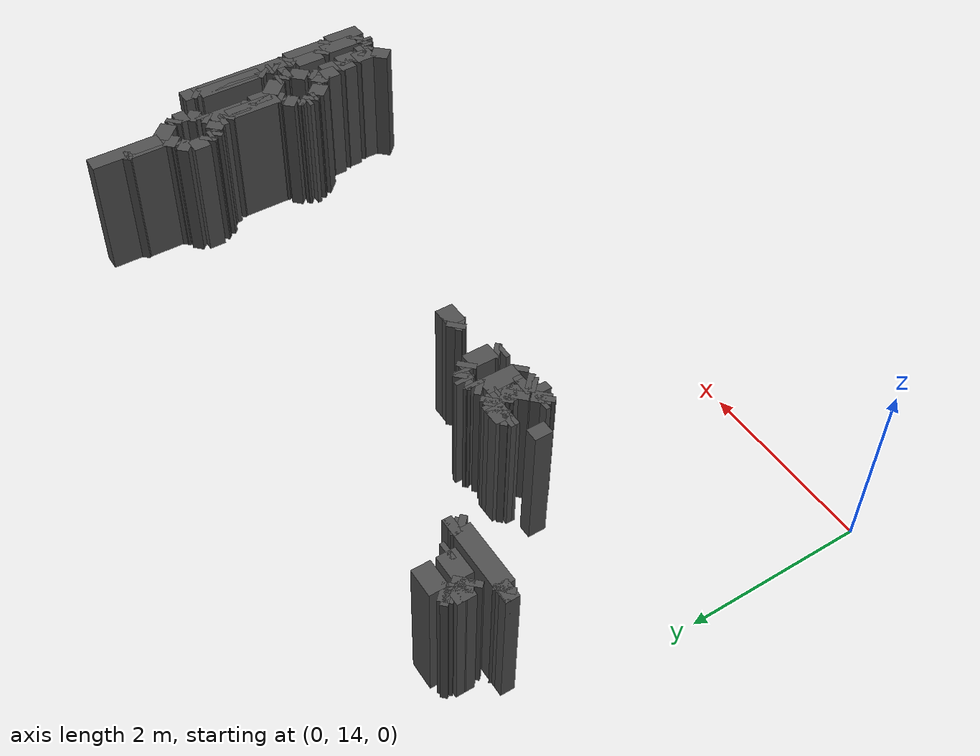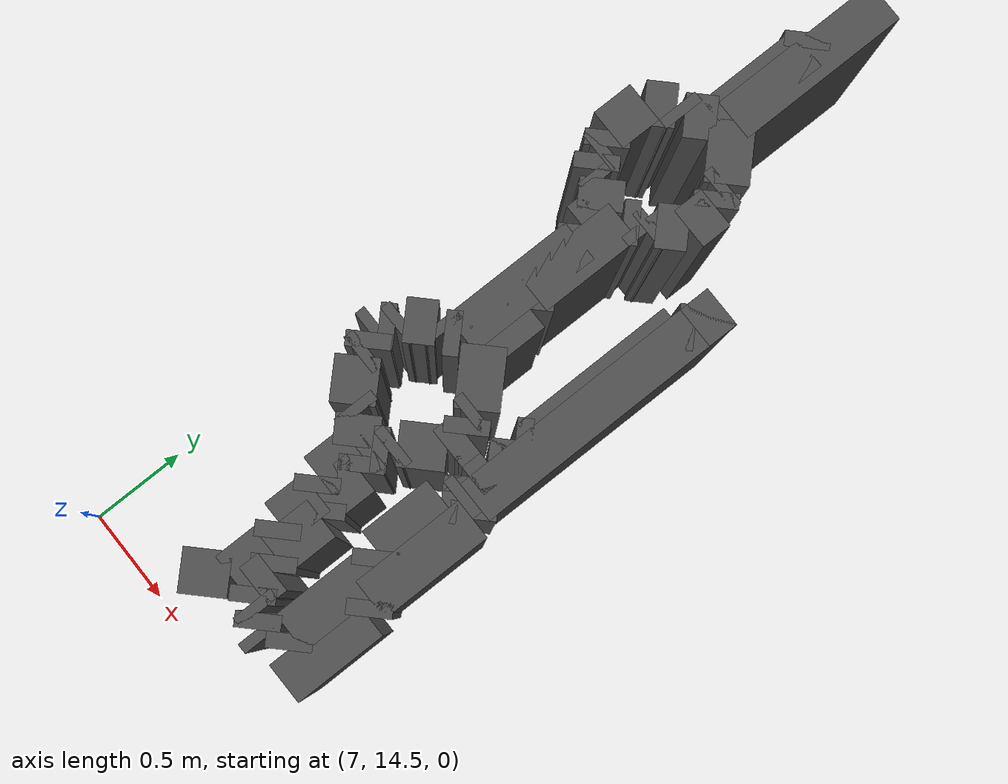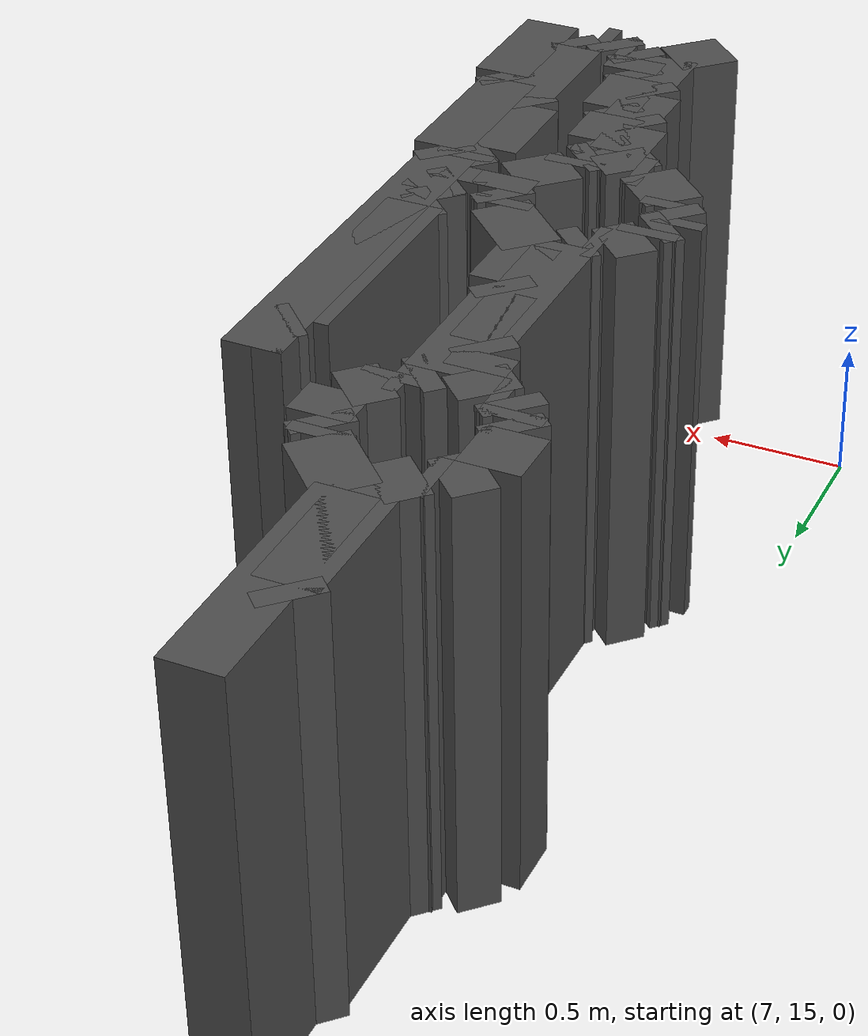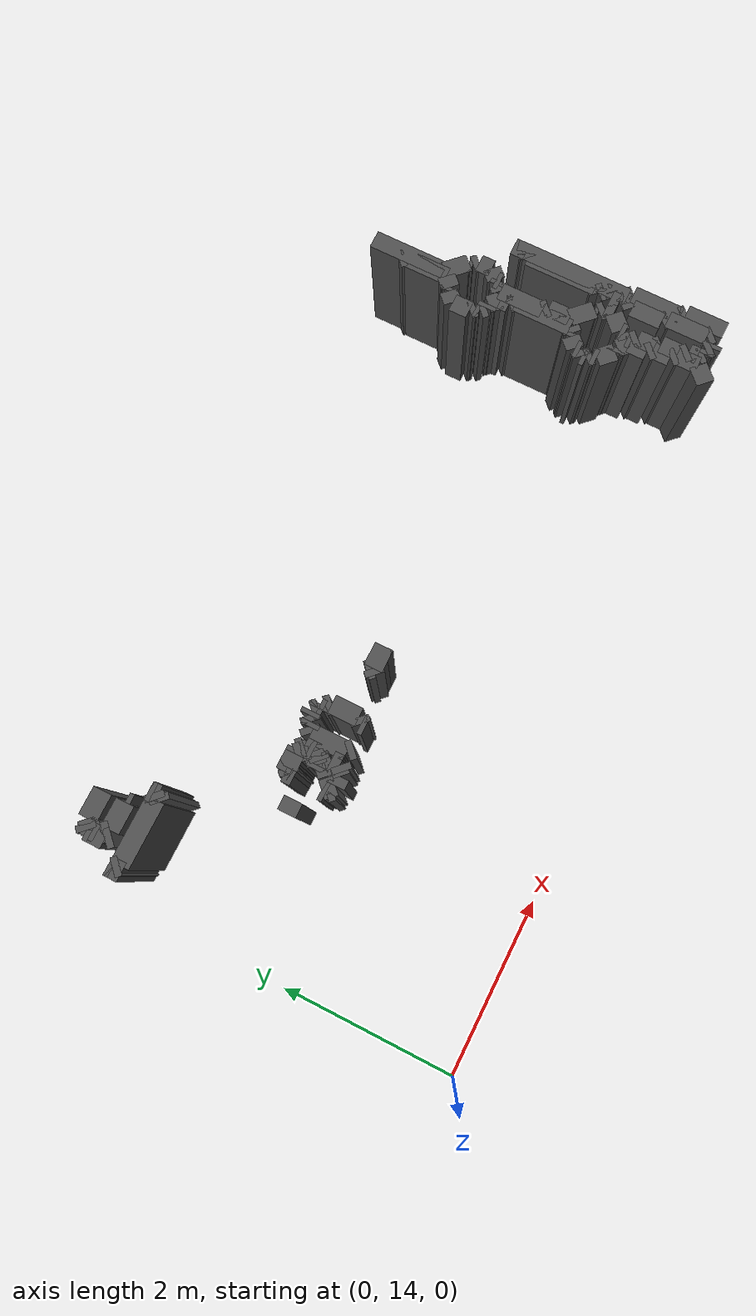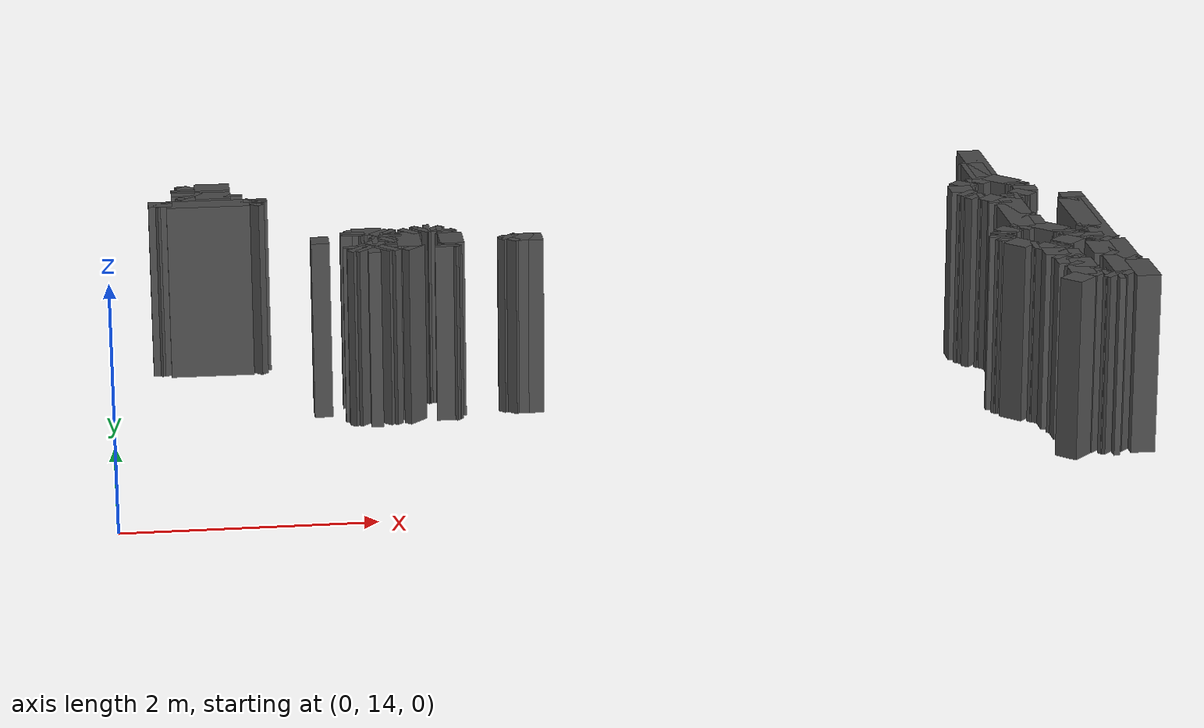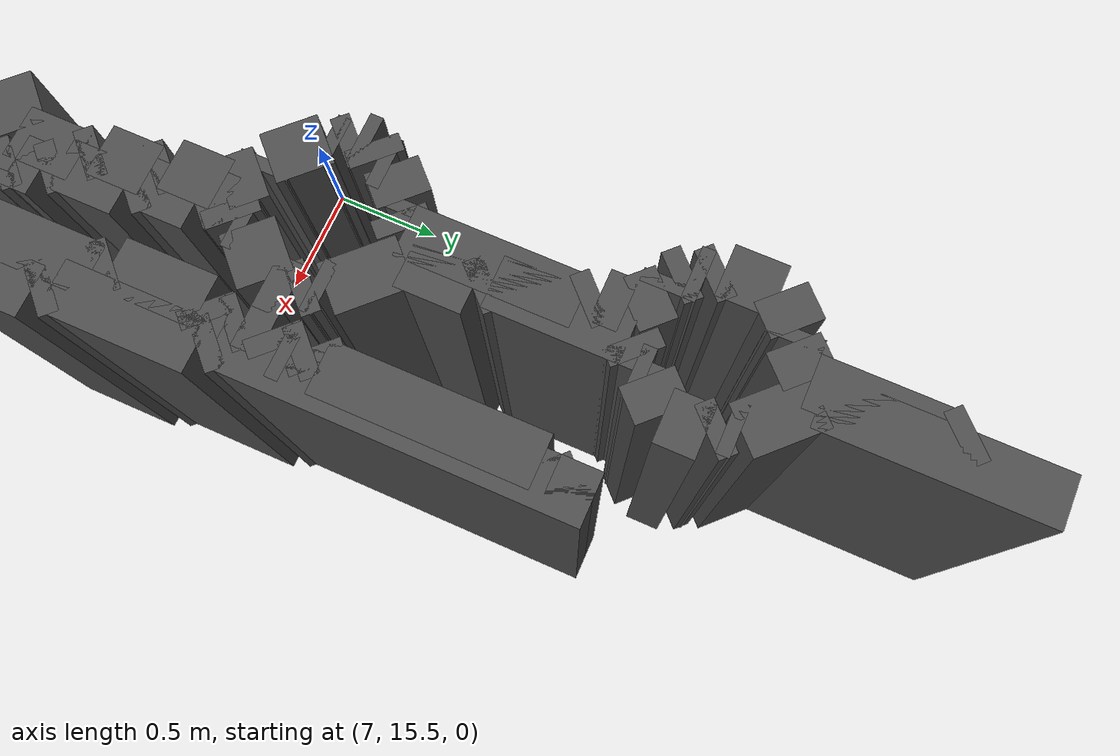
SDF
<sdf version="1.9">
 <model name="generated_walls">
  <static>true</static>
  <link name="wall_115_0">
   <pose>0.675 18.075 0.75 0 0 2.356</pose>
   <collision name="collision"><geometry><box><size>0.071 0.2 1.5</size></box></geometry></collision>
   <visual name="visual">
    <geometry><box><size>0.071 0.2 1.5</size></box></geometry>
    <material><ambient>0.3 0.3 0.3 1</ambient></material>
   </visual>
  </link>
  <link name="wall_115_1">
   <pose>0.650 18.200 0.75 0 0 1.571</pose>
   <collision name="collision"><geometry><box><size>0.200 0.2 1.5</size></box></geometry></collision>
   <visual name="visual">
    <geometry><box><size>0.200 0.2 1.5</size></box></geometry>
    <material><ambient>0.3 0.3 0.3 1</ambient></material>
   </visual>
  </link>
  <link name="wall_115_2">
   <pose>0.675 18.325 0.75 0 0 0.785</pose>
   <collision name="collision"><geometry><box><size>0.071 0.2 1.5</size></box></geometry></collision>
   <visual name="visual">
    <geometry><box><size>0.071 0.2 1.5</size></box></geometry>
    <material><ambient>0.3 0.3 0.3 1</ambient></material>
   </visual>
  </link>
  <link name="wall_115_13">
   <pose>0.900 18.350 0.75 0 0 3.142</pose>
   <collision name="collision"><geometry><box><size>0.300 0.2 1.5</size></box></geometry></collision>
   <visual name="visual">
    <geometry><box><size>0.300 0.2 1.5</size></box></geometry>
    <material><ambient>0.3 0.3 0.3 1</ambient></material>
   </visual>
  </link>
  <link name="wall_115_14">
   <pose>0.700 18.300 0.75 0 0 -2.356</pose>
   <collision name="collision"><geometry><box><size>0.141 0.2 1.5</size></box></geometry></collision>
   <visual name="visual">
    <geometry><box><size>0.141 0.2 1.5</size></box></geometry>
    <material><ambient>0.3 0.3 0.3 1</ambient></material>
   </visual>
  </link>
  <link name="wall_115_15">
   <pose>0.650 18.225 0.75 0 0 -1.571</pose>
   <collision name="collision"><geometry><box><size>0.050 0.2 1.5</size></box></geometry></collision>
   <visual name="visual">
    <geometry><box><size>0.050 0.2 1.5</size></box></geometry>
    <material><ambient>0.3 0.3 0.3 1</ambient></material>
   </visual>
  </link>
  <link name="wall_115_16">
   <pose>0.700 18.150 0.75 0 0 -0.785</pose>
   <collision name="collision"><geometry><box><size>0.141 0.2 1.5</size></box></geometry></collision>
   <visual name="visual">
    <geometry><box><size>0.141 0.2 1.5</size></box></geometry>
    <material><ambient>0.3 0.3 0.3 1</ambient></material>
   </visual>
  </link>
  <link name="wall_115_17">
   <pose>0.900 18.100 0.75 0 0 0.000</pose>
   <collision name="collision"><geometry><box><size>0.300 0.2 1.5</size></box></geometry></collision>
   <visual name="visual">
    <geometry><box><size>0.300 0.2 1.5</size></box></geometry>
    <material><ambient>0.3 0.3 0.3 1</ambient></material>
   </visual>
  </link>
  <link name="wall_115_18">
   <pose>1.050 18.075 0.75 0 0 -1.571</pose>
   <collision name="collision"><geometry><box><size>0.050 0.2 1.5</size></box></geometry></collision>
   <visual name="visual">
    <geometry><box><size>0.050 0.2 1.5</size></box></geometry>
    <material><ambient>0.3 0.3 0.3 1</ambient></material>
   </visual>
  </link>
  <link name="wall_117_0">
   <pose>0.450 17.875 0.75 0 0 1.571</pose>
   <collision name="collision"><geometry><box><size>0.150 0.2 1.5</size></box></geometry></collision>
   <visual name="visual">
    <geometry><box><size>0.150 0.2 1.5</size></box></geometry>
    <material><ambient>0.3 0.3 0.3 1</ambient></material>
   </visual>
  </link>
  <link name="wall_117_1">
   <pose>0.450 17.925 0.75 0 0 -1.571</pose>
   <collision name="collision"><geometry><box><size>0.050 0.2 1.5</size></box></geometry></collision>
   <visual name="visual">
    <geometry><box><size>0.050 0.2 1.5</size></box></geometry>
    <material><ambient>0.3 0.3 0.3 1</ambient></material>
   </visual>
  </link>
  <link name="wall_117_2">
   <pose>0.475 17.875 0.75 0 0 -0.785</pose>
   <collision name="collision"><geometry><box><size>0.071 0.2 1.5</size></box></geometry></collision>
   <visual name="visual">
    <geometry><box><size>0.071 0.2 1.5</size></box></geometry>
    <material><ambient>0.3 0.3 0.3 1</ambient></material>
   </visual>
  </link>
  <link name="wall_117_3">
   <pose>0.850 17.850 0.75 0 0 0.000</pose>
   <collision name="collision"><geometry><box><size>0.700 0.2 1.5</size></box></geometry></collision>
   <visual name="visual">
    <geometry><box><size>0.700 0.2 1.5</size></box></geometry>
    <material><ambient>0.3 0.3 0.3 1</ambient></material>
   </visual>
  </link>
  <link name="wall_117_4">
   <pose>1.225 17.875 0.75 0 0 0.785</pose>
   <collision name="collision"><geometry><box><size>0.071 0.2 1.5</size></box></geometry></collision>
   <visual name="visual">
    <geometry><box><size>0.071 0.2 1.5</size></box></geometry>
    <material><ambient>0.3 0.3 0.3 1</ambient></material>
   </visual>
  </link>
  <link name="wall_117_5">
   <pose>1.250 17.925 0.75 0 0 1.571</pose>
   <collision name="collision"><geometry><box><size>0.050 0.2 1.5</size></box></geometry></collision>
   <visual name="visual">
    <geometry><box><size>0.050 0.2 1.5</size></box></geometry>
    <material><ambient>0.3 0.3 0.3 1</ambient></material>
   </visual>
  </link>
  <link name="wall_117_6">
   <pose>1.250 17.900 0.75 0 0 -1.571</pose>
   <collision name="collision"><geometry><box><size>0.100 0.2 1.5</size></box></geometry></collision>
   <visual name="visual">
    <geometry><box><size>0.100 0.2 1.5</size></box></geometry>
    <material><ambient>0.3 0.3 0.3 1</ambient></material>
   </visual>
  </link>
  <link name="wall_117_7">
   <pose>1.225 17.825 0.75 0 0 -2.356</pose>
   <collision name="collision"><geometry><box><size>0.071 0.2 1.5</size></box></geometry></collision>
   <visual name="visual">
    <geometry><box><size>0.071 0.2 1.5</size></box></geometry>
    <material><ambient>0.3 0.3 0.3 1</ambient></material>
   </visual>
  </link>
  <link name="wall_123_0">
   <pose>1.725 16.650 0.75 0 0 0.000</pose>
   <collision name="collision"><geometry><box><size>0.150 0.2 1.5</size></box></geometry></collision>
   <visual name="visual">
    <geometry><box><size>0.150 0.2 1.5</size></box></geometry>
    <material><ambient>0.3 0.3 0.3 1</ambient></material>
   </visual>
  </link>
  <link name="wall_125_0">
   <pose>2.475 16.375 0.75 0 0 2.356</pose>
   <collision name="collision"><geometry><box><size>0.071 0.2 1.5</size></box></geometry></collision>
   <visual name="visual">
    <geometry><box><size>0.071 0.2 1.5</size></box></geometry>
    <material><ambient>0.3 0.3 0.3 1</ambient></material>
   </visual>
  </link>
  <link name="wall_125_1">
   <pose>2.450 16.600 0.75 0 0 1.571</pose>
   <collision name="collision"><geometry><box><size>0.400 0.2 1.5</size></box></geometry></collision>
   <visual name="visual">
    <geometry><box><size>0.400 0.2 1.5</size></box></geometry>
    <material><ambient>0.3 0.3 0.3 1</ambient></material>
   </visual>
  </link>
  <link name="wall_125_2">
   <pose>2.475 16.825 0.75 0 0 0.785</pose>
   <collision name="collision"><geometry><box><size>0.071 0.2 1.5</size></box></geometry></collision>
   <visual name="visual">
    <geometry><box><size>0.071 0.2 1.5</size></box></geometry>
    <material><ambient>0.3 0.3 0.3 1</ambient></material>
   </visual>
  </link>
  <link name="wall_125_3">
   <pose>2.525 16.850 0.75 0 0 0.000</pose>
   <collision name="collision"><geometry><box><size>0.050 0.2 1.5</size></box></geometry></collision>
   <visual name="visual">
    <geometry><box><size>0.050 0.2 1.5</size></box></geometry>
    <material><ambient>0.3 0.3 0.3 1</ambient></material>
   </visual>
  </link>
  <link name="wall_125_4">
   <pose>2.575 16.875 0.75 0 0 0.785</pose>
   <collision name="collision"><geometry><box><size>0.071 0.2 1.5</size></box></geometry></collision>
   <visual name="visual">
    <geometry><box><size>0.071 0.2 1.5</size></box></geometry>
    <material><ambient>0.3 0.3 0.3 1</ambient></material>
   </visual>
  </link>
  <link name="wall_125_5">
   <pose>2.625 16.900 0.75 0 0 0.000</pose>
   <collision name="collision"><geometry><box><size>0.050 0.2 1.5</size></box></geometry></collision>
   <visual name="visual">
    <geometry><box><size>0.050 0.2 1.5</size></box></geometry>
    <material><ambient>0.3 0.3 0.3 1</ambient></material>
   </visual>
  </link>
  <link name="wall_125_6">
   <pose>2.675 16.875 0.75 0 0 -0.785</pose>
   <collision name="collision"><geometry><box><size>0.071 0.2 1.5</size></box></geometry></collision>
   <visual name="visual">
    <geometry><box><size>0.071 0.2 1.5</size></box></geometry>
    <material><ambient>0.3 0.3 0.3 1</ambient></material>
   </visual>
  </link>
  <link name="wall_125_7">
   <pose>2.725 16.850 0.75 0 0 0.000</pose>
   <collision name="collision"><geometry><box><size>0.050 0.2 1.5</size></box></geometry></collision>
   <visual name="visual">
    <geometry><box><size>0.050 0.2 1.5</size></box></geometry>
    <material><ambient>0.3 0.3 0.3 1</ambient></material>
   </visual>
  </link>
  <link name="wall_125_8">
   <pose>2.750 16.825 0.75 0 0 -1.571</pose>
   <collision name="collision"><geometry><box><size>0.050 0.2 1.5</size></box></geometry></collision>
   <visual name="visual">
    <geometry><box><size>0.050 0.2 1.5</size></box></geometry>
    <material><ambient>0.3 0.3 0.3 1</ambient></material>
   </visual>
  </link>
  <link name="wall_125_9">
   <pose>2.775 16.775 0.75 0 0 -0.785</pose>
   <collision name="collision"><geometry><box><size>0.071 0.2 1.5</size></box></geometry></collision>
   <visual name="visual">
    <geometry><box><size>0.071 0.2 1.5</size></box></geometry>
    <material><ambient>0.3 0.3 0.3 1</ambient></material>
   </visual>
  </link>
  <link name="wall_125_10">
   <pose>2.800 16.600 0.75 0 0 -1.571</pose>
   <collision name="collision"><geometry><box><size>0.300 0.2 1.5</size></box></geometry></collision>
   <visual name="visual">
    <geometry><box><size>0.300 0.2 1.5</size></box></geometry>
    <material><ambient>0.3 0.3 0.3 1</ambient></material>
   </visual>
  </link>
  <link name="wall_125_11">
   <pose>2.775 16.425 0.75 0 0 -2.356</pose>
   <collision name="collision"><geometry><box><size>0.071 0.2 1.5</size></box></geometry></collision>
   <visual name="visual">
    <geometry><box><size>0.071 0.2 1.5</size></box></geometry>
    <material><ambient>0.3 0.3 0.3 1</ambient></material>
   </visual>
  </link>
  <link name="wall_125_12">
   <pose>2.750 16.375 0.75 0 0 -1.571</pose>
   <collision name="collision"><geometry><box><size>0.050 0.2 1.5</size></box></geometry></collision>
   <visual name="visual">
    <geometry><box><size>0.050 0.2 1.5</size></box></geometry>
    <material><ambient>0.3 0.3 0.3 1</ambient></material>
   </visual>
  </link>
  <link name="wall_126_0">
   <pose>2.025 16.375 0.75 0 0 2.356</pose>
   <collision name="collision"><geometry><box><size>0.071 0.2 1.5</size></box></geometry></collision>
   <visual name="visual">
    <geometry><box><size>0.071 0.2 1.5</size></box></geometry>
    <material><ambient>0.3 0.3 0.3 1</ambient></material>
   </visual>
  </link>
  <link name="wall_126_1">
   <pose>2.000 16.425 0.75 0 0 1.571</pose>
   <collision name="collision"><geometry><box><size>0.050 0.2 1.5</size></box></geometry></collision>
   <visual name="visual">
    <geometry><box><size>0.050 0.2 1.5</size></box></geometry>
    <material><ambient>0.3 0.3 0.3 1</ambient></material>
   </visual>
  </link>
  <link name="wall_126_2">
   <pose>2.050 16.400 0.75 0 0 -0.785</pose>
   <collision name="collision"><geometry><box><size>0.141 0.2 1.5</size></box></geometry></collision>
   <visual name="visual">
    <geometry><box><size>0.141 0.2 1.5</size></box></geometry>
    <material><ambient>0.3 0.3 0.3 1</ambient></material>
   </visual>
  </link>
  <link name="wall_126_3">
   <pose>2.150 16.350 0.75 0 0 0.000</pose>
   <collision name="collision"><geometry><box><size>0.100 0.2 1.5</size></box></geometry></collision>
   <visual name="visual">
    <geometry><box><size>0.100 0.2 1.5</size></box></geometry>
    <material><ambient>0.3 0.3 0.3 1</ambient></material>
   </visual>
  </link>
  <link name="wall_126_4">
   <pose>2.225 16.375 0.75 0 0 0.785</pose>
   <collision name="collision"><geometry><box><size>0.071 0.2 1.5</size></box></geometry></collision>
   <visual name="visual">
    <geometry><box><size>0.071 0.2 1.5</size></box></geometry>
    <material><ambient>0.3 0.3 0.3 1</ambient></material>
   </visual>
  </link>
  <link name="wall_126_5">
   <pose>2.250 16.450 0.75 0 0 1.571</pose>
   <collision name="collision"><geometry><box><size>0.100 0.2 1.5</size></box></geometry></collision>
   <visual name="visual">
    <geometry><box><size>0.100 0.2 1.5</size></box></geometry>
    <material><ambient>0.3 0.3 0.3 1</ambient></material>
   </visual>
  </link>
  <link name="wall_126_6">
   <pose>2.200 16.550 0.75 0 0 2.356</pose>
   <collision name="collision"><geometry><box><size>0.141 0.2 1.5</size></box></geometry></collision>
   <visual name="visual">
    <geometry><box><size>0.141 0.2 1.5</size></box></geometry>
    <material><ambient>0.3 0.3 0.3 1</ambient></material>
   </visual>
  </link>
  <link name="wall_126_7">
   <pose>2.175 16.600 0.75 0 0 0.000</pose>
   <collision name="collision"><geometry><box><size>0.050 0.2 1.5</size></box></geometry></collision>
   <visual name="visual">
    <geometry><box><size>0.050 0.2 1.5</size></box></geometry>
    <material><ambient>0.3 0.3 0.3 1</ambient></material>
   </visual>
  </link>
  <link name="wall_126_8">
   <pose>2.250 16.650 0.75 0 0 0.785</pose>
   <collision name="collision"><geometry><box><size>0.141 0.2 1.5</size></box></geometry></collision>
   <visual name="visual">
    <geometry><box><size>0.141 0.2 1.5</size></box></geometry>
    <material><ambient>0.3 0.3 0.3 1</ambient></material>
   </visual>
  </link>
  <link name="wall_126_9">
   <pose>2.300 16.725 0.75 0 0 1.571</pose>
   <collision name="collision"><geometry><box><size>0.050 0.2 1.5</size></box></geometry></collision>
   <visual name="visual">
    <geometry><box><size>0.050 0.2 1.5</size></box></geometry>
    <material><ambient>0.3 0.3 0.3 1</ambient></material>
   </visual>
  </link>
  <link name="wall_126_10">
   <pose>2.250 16.800 0.75 0 0 2.356</pose>
   <collision name="collision"><geometry><box><size>0.141 0.2 1.5</size></box></geometry></collision>
   <visual name="visual">
    <geometry><box><size>0.141 0.2 1.5</size></box></geometry>
    <material><ambient>0.3 0.3 0.3 1</ambient></material>
   </visual>
  </link>
  <link name="wall_126_11">
   <pose>2.125 16.850 0.75 0 0 3.142</pose>
   <collision name="collision"><geometry><box><size>0.150 0.2 1.5</size></box></geometry></collision>
   <visual name="visual">
    <geometry><box><size>0.150 0.2 1.5</size></box></geometry>
    <material><ambient>0.3 0.3 0.3 1</ambient></material>
   </visual>
  </link>
  <link name="wall_126_12">
   <pose>2.025 16.825 0.75 0 0 -2.356</pose>
   <collision name="collision"><geometry><box><size>0.071 0.2 1.5</size></box></geometry></collision>
   <visual name="visual">
    <geometry><box><size>0.071 0.2 1.5</size></box></geometry>
    <material><ambient>0.3 0.3 0.3 1</ambient></material>
   </visual>
  </link>
  <link name="wall_126_13">
   <pose>2.000 16.775 0.75 0 0 -1.571</pose>
   <collision name="collision"><geometry><box><size>0.050 0.2 1.5</size></box></geometry></collision>
   <visual name="visual">
    <geometry><box><size>0.050 0.2 1.5</size></box></geometry>
    <material><ambient>0.3 0.3 0.3 1</ambient></material>
   </visual>
  </link>
  <link name="wall_126_14">
   <pose>2.000 16.800 0.75 0 0 1.571</pose>
   <collision name="collision"><geometry><box><size>0.100 0.2 1.5</size></box></geometry></collision>
   <visual name="visual">
    <geometry><box><size>0.100 0.2 1.5</size></box></geometry>
    <material><ambient>0.3 0.3 0.3 1</ambient></material>
   </visual>
  </link>
  <link name="wall_126_15">
   <pose>2.125 16.850 0.75 0 0 0.000</pose>
   <collision name="collision"><geometry><box><size>0.250 0.2 1.5</size></box></geometry></collision>
   <visual name="visual">
    <geometry><box><size>0.250 0.2 1.5</size></box></geometry>
    <material><ambient>0.3 0.3 0.3 1</ambient></material>
   </visual>
  </link>
  <link name="wall_126_16">
   <pose>2.275 16.825 0.75 0 0 -0.785</pose>
   <collision name="collision"><geometry><box><size>0.071 0.2 1.5</size></box></geometry></collision>
   <visual name="visual">
    <geometry><box><size>0.071 0.2 1.5</size></box></geometry>
    <material><ambient>0.3 0.3 0.3 1</ambient></material>
   </visual>
  </link>
  <link name="wall_126_17">
   <pose>2.300 16.725 0.75 0 0 -1.571</pose>
   <collision name="collision"><geometry><box><size>0.150 0.2 1.5</size></box></geometry></collision>
   <visual name="visual">
    <geometry><box><size>0.150 0.2 1.5</size></box></geometry>
    <material><ambient>0.3 0.3 0.3 1</ambient></material>
   </visual>
  </link>
  <link name="wall_126_18">
   <pose>2.275 16.625 0.75 0 0 -2.356</pose>
   <collision name="collision"><geometry><box><size>0.071 0.2 1.5</size></box></geometry></collision>
   <visual name="visual">
    <geometry><box><size>0.071 0.2 1.5</size></box></geometry>
    <material><ambient>0.3 0.3 0.3 1</ambient></material>
   </visual>
  </link>
  <link name="wall_126_19">
   <pose>2.250 16.575 0.75 0 0 -1.571</pose>
   <collision name="collision"><geometry><box><size>0.050 0.2 1.5</size></box></geometry></collision>
   <visual name="visual">
    <geometry><box><size>0.050 0.2 1.5</size></box></geometry>
    <material><ambient>0.3 0.3 0.3 1</ambient></material>
   </visual>
  </link>
  <link name="wall_126_20">
   <pose>2.275 16.525 0.75 0 0 -0.785</pose>
   <collision name="collision"><geometry><box><size>0.071 0.2 1.5</size></box></geometry></collision>
   <visual name="visual">
    <geometry><box><size>0.071 0.2 1.5</size></box></geometry>
    <material><ambient>0.3 0.3 0.3 1</ambient></material>
   </visual>
  </link>
  <link name="wall_126_21">
   <pose>2.300 16.450 0.75 0 0 -1.571</pose>
   <collision name="collision"><geometry><box><size>0.100 0.2 1.5</size></box></geometry></collision>
   <visual name="visual">
    <geometry><box><size>0.100 0.2 1.5</size></box></geometry>
    <material><ambient>0.3 0.3 0.3 1</ambient></material>
   </visual>
  </link>
  <link name="wall_126_22">
   <pose>2.275 16.375 0.75 0 0 -2.356</pose>
   <collision name="collision"><geometry><box><size>0.071 0.2 1.5</size></box></geometry></collision>
   <visual name="visual">
    <geometry><box><size>0.071 0.2 1.5</size></box></geometry>
    <material><ambient>0.3 0.3 0.3 1</ambient></material>
   </visual>
  </link>
  <link name="wall_160_26">
   <pose>3.275 16.575 0.75 0 0 -0.785</pose>
   <collision name="collision"><geometry><box><size>0.071 0.2 1.5</size></box></geometry></collision>
   <visual name="visual">
    <geometry><box><size>0.071 0.2 1.5</size></box></geometry>
    <material><ambient>0.3 0.3 0.3 1</ambient></material>
   </visual>
  </link>
  <link name="wall_160_27">
   <pose>3.425 16.550 0.75 0 0 0.000</pose>
   <collision name="collision"><geometry><box><size>0.250 0.2 1.5</size></box></geometry></collision>
   <visual name="visual">
    <geometry><box><size>0.250 0.2 1.5</size></box></geometry>
    <material><ambient>0.3 0.3 0.3 1</ambient></material>
   </visual>
  </link>
  <link name="wall_160_28">
   <pose>3.425 16.550 0.75 0 0 3.142</pose>
   <collision name="collision"><geometry><box><size>0.250 0.2 1.5</size></box></geometry></collision>
   <visual name="visual">
    <geometry><box><size>0.250 0.2 1.5</size></box></geometry>
    <material><ambient>0.3 0.3 0.3 1</ambient></material>
   </visual>
  </link>
  <link name="wall_160_29">
   <pose>3.275 16.525 0.75 0 0 -2.356</pose>
   <collision name="collision"><geometry><box><size>0.071 0.2 1.5</size></box></geometry></collision>
   <visual name="visual">
    <geometry><box><size>0.071 0.2 1.5</size></box></geometry>
    <material><ambient>0.3 0.3 0.3 1</ambient></material>
   </visual>
  </link>
  <link name="wall_161_191">
   <pose>7.675 14.875 0.75 0 0 0.785</pose>
   <collision name="collision"><geometry><box><size>0.212 0.2 1.5</size></box></geometry></collision>
   <visual name="visual">
    <geometry><box><size>0.212 0.2 1.5</size></box></geometry>
    <material><ambient>0.3 0.3 0.3 1</ambient></material>
   </visual>
  </link>
  <link name="wall_161_192">
   <pose>7.750 15.075 0.75 0 0 1.571</pose>
   <collision name="collision"><geometry><box><size>0.250 0.2 1.5</size></box></geometry></collision>
   <visual name="visual">
    <geometry><box><size>0.250 0.2 1.5</size></box></geometry>
    <material><ambient>0.3 0.3 0.3 1</ambient></material>
   </visual>
  </link>
  <link name="wall_161_193">
   <pose>7.725 15.225 0.75 0 0 2.356</pose>
   <collision name="collision"><geometry><box><size>0.071 0.2 1.5</size></box></geometry></collision>
   <visual name="visual">
    <geometry><box><size>0.071 0.2 1.5</size></box></geometry>
    <material><ambient>0.3 0.3 0.3 1</ambient></material>
   </visual>
  </link>
  <link name="wall_161_194">
   <pose>7.700 15.350 0.75 0 0 1.571</pose>
   <collision name="collision"><geometry><box><size>0.200 0.2 1.5</size></box></geometry></collision>
   <visual name="visual">
    <geometry><box><size>0.200 0.2 1.5</size></box></geometry>
    <material><ambient>0.3 0.3 0.3 1</ambient></material>
   </visual>
  </link>
  <link name="wall_161_195">
   <pose>7.675 15.475 0.75 0 0 2.356</pose>
   <collision name="collision"><geometry><box><size>0.071 0.2 1.5</size></box></geometry></collision>
   <visual name="visual">
    <geometry><box><size>0.071 0.2 1.5</size></box></geometry>
    <material><ambient>0.3 0.3 0.3 1</ambient></material>
   </visual>
  </link>
  <link name="wall_161_196">
   <pose>7.650 15.600 0.75 0 0 1.571</pose>
   <collision name="collision"><geometry><box><size>0.200 0.2 1.5</size></box></geometry></collision>
   <visual name="visual">
    <geometry><box><size>0.200 0.2 1.5</size></box></geometry>
    <material><ambient>0.3 0.3 0.3 1</ambient></material>
   </visual>
  </link>
  <link name="wall_161_197">
   <pose>7.600 15.750 0.75 0 0 2.356</pose>
   <collision name="collision"><geometry><box><size>0.141 0.2 1.5</size></box></geometry></collision>
   <visual name="visual">
    <geometry><box><size>0.141 0.2 1.5</size></box></geometry>
    <material><ambient>0.3 0.3 0.3 1</ambient></material>
   </visual>
  </link>
  <link name="wall_161_198">
   <pose>7.525 15.800 0.75 0 0 3.142</pose>
   <collision name="collision"><geometry><box><size>0.050 0.2 1.5</size></box></geometry></collision>
   <visual name="visual">
    <geometry><box><size>0.050 0.2 1.5</size></box></geometry>
    <material><ambient>0.3 0.3 0.3 1</ambient></material>
   </visual>
  </link>
  <link name="wall_161_199">
   <pose>7.425 15.875 0.75 0 0 2.356</pose>
   <collision name="collision"><geometry><box><size>0.212 0.2 1.5</size></box></geometry></collision>
   <visual name="visual">
    <geometry><box><size>0.212 0.2 1.5</size></box></geometry>
    <material><ambient>0.3 0.3 0.3 1</ambient></material>
   </visual>
  </link>
  <link name="wall_161_200">
   <pose>7.350 15.975 0.75 0 0 1.571</pose>
   <collision name="collision"><geometry><box><size>0.050 0.2 1.5</size></box></geometry></collision>
   <visual name="visual">
    <geometry><box><size>0.050 0.2 1.5</size></box></geometry>
    <material><ambient>0.3 0.3 0.3 1</ambient></material>
   </visual>
  </link>
  <link name="wall_161_201">
   <pose>7.325 16.025 0.75 0 0 2.356</pose>
   <collision name="collision"><geometry><box><size>0.071 0.2 1.5</size></box></geometry></collision>
   <visual name="visual">
    <geometry><box><size>0.071 0.2 1.5</size></box></geometry>
    <material><ambient>0.3 0.3 0.3 1</ambient></material>
   </visual>
  </link>
  <link name="wall_161_202">
   <pose>7.300 16.075 0.75 0 0 1.571</pose>
   <collision name="collision"><geometry><box><size>0.050 0.2 1.5</size></box></geometry></collision>
   <visual name="visual">
    <geometry><box><size>0.050 0.2 1.5</size></box></geometry>
    <material><ambient>0.3 0.3 0.3 1</ambient></material>
   </visual>
  </link>
  <link name="wall_161_203">
   <pose>7.325 16.125 0.75 0 0 0.785</pose>
   <collision name="collision"><geometry><box><size>0.071 0.2 1.5</size></box></geometry></collision>
   <visual name="visual">
    <geometry><box><size>0.071 0.2 1.5</size></box></geometry>
    <material><ambient>0.3 0.3 0.3 1</ambient></material>
   </visual>
  </link>
  <link name="wall_161_204">
   <pose>7.350 16.175 0.75 0 0 1.571</pose>
   <collision name="collision"><geometry><box><size>0.050 0.2 1.5</size></box></geometry></collision>
   <visual name="visual">
    <geometry><box><size>0.050 0.2 1.5</size></box></geometry>
    <material><ambient>0.3 0.3 0.3 1</ambient></material>
   </visual>
  </link>
  <link name="wall_161_205">
   <pose>7.400 16.250 0.75 0 0 0.785</pose>
   <collision name="collision"><geometry><box><size>0.141 0.2 1.5</size></box></geometry></collision>
   <visual name="visual">
    <geometry><box><size>0.141 0.2 1.5</size></box></geometry>
    <material><ambient>0.3 0.3 0.3 1</ambient></material>
   </visual>
  </link>
  <link name="wall_161_206">
   <pose>7.475 16.300 0.75 0 0 0.000</pose>
   <collision name="collision"><geometry><box><size>0.050 0.2 1.5</size></box></geometry></collision>
   <visual name="visual">
    <geometry><box><size>0.050 0.2 1.5</size></box></geometry>
    <material><ambient>0.3 0.3 0.3 1</ambient></material>
   </visual>
  </link>
  <link name="wall_161_207">
   <pose>7.525 16.325 0.75 0 0 0.785</pose>
   <collision name="collision"><geometry><box><size>0.071 0.2 1.5</size></box></geometry></collision>
   <visual name="visual">
    <geometry><box><size>0.071 0.2 1.5</size></box></geometry>
    <material><ambient>0.3 0.3 0.3 1</ambient></material>
   </visual>
  </link>
  <link name="wall_161_208">
   <pose>7.550 16.675 0.75 0 0 1.571</pose>
   <collision name="collision"><geometry><box><size>0.650 0.2 1.5</size></box></geometry></collision>
   <visual name="visual">
    <geometry><box><size>0.650 0.2 1.5</size></box></geometry>
    <material><ambient>0.3 0.3 0.3 1</ambient></material>
   </visual>
  </link>
  <link name="wall_161_209">
   <pose>7.525 17.025 0.75 0 0 2.356</pose>
   <collision name="collision"><geometry><box><size>0.071 0.2 1.5</size></box></geometry></collision>
   <visual name="visual">
    <geometry><box><size>0.071 0.2 1.5</size></box></geometry>
    <material><ambient>0.3 0.3 0.3 1</ambient></material>
   </visual>
  </link>
  <link name="wall_161_210">
   <pose>7.500 17.100 0.75 0 0 1.571</pose>
   <collision name="collision"><geometry><box><size>0.100 0.2 1.5</size></box></geometry></collision>
   <visual name="visual">
    <geometry><box><size>0.100 0.2 1.5</size></box></geometry>
    <material><ambient>0.3 0.3 0.3 1</ambient></material>
   </visual>
  </link>
  <link name="wall_161_211">
   <pose>7.450 17.200 0.75 0 0 2.356</pose>
   <collision name="collision"><geometry><box><size>0.141 0.2 1.5</size></box></geometry></collision>
   <visual name="visual">
    <geometry><box><size>0.141 0.2 1.5</size></box></geometry>
    <material><ambient>0.3 0.3 0.3 1</ambient></material>
   </visual>
  </link>
  <link name="wall_161_212">
   <pose>7.375 17.250 0.75 0 0 3.142</pose>
   <collision name="collision"><geometry><box><size>0.050 0.2 1.5</size></box></geometry></collision>
   <visual name="visual">
    <geometry><box><size>0.050 0.2 1.5</size></box></geometry>
    <material><ambient>0.3 0.3 0.3 1</ambient></material>
   </visual>
  </link>
  <link name="wall_161_213">
   <pose>7.325 17.275 0.75 0 0 2.356</pose>
   <collision name="collision"><geometry><box><size>0.071 0.2 1.5</size></box></geometry></collision>
   <visual name="visual">
    <geometry><box><size>0.071 0.2 1.5</size></box></geometry>
    <material><ambient>0.3 0.3 0.3 1</ambient></material>
   </visual>
  </link>
  <link name="wall_161_214">
   <pose>7.300 17.325 0.75 0 0 1.571</pose>
   <collision name="collision"><geometry><box><size>0.050 0.2 1.5</size></box></geometry></collision>
   <visual name="visual">
    <geometry><box><size>0.050 0.2 1.5</size></box></geometry>
    <material><ambient>0.3 0.3 0.3 1</ambient></material>
   </visual>
  </link>
  <link name="wall_161_215">
   <pose>7.275 17.375 0.75 0 0 2.356</pose>
   <collision name="collision"><geometry><box><size>0.071 0.2 1.5</size></box></geometry></collision>
   <visual name="visual">
    <geometry><box><size>0.071 0.2 1.5</size></box></geometry>
    <material><ambient>0.3 0.3 0.3 1</ambient></material>
   </visual>
  </link>
  <link name="wall_161_216">
   <pose>7.250 17.500 0.75 0 0 1.571</pose>
   <collision name="collision"><geometry><box><size>0.200 0.2 1.5</size></box></geometry></collision>
   <visual name="visual">
    <geometry><box><size>0.200 0.2 1.5</size></box></geometry>
    <material><ambient>0.3 0.3 0.3 1</ambient></material>
   </visual>
  </link>
  <link name="wall_161_217">
   <pose>7.300 17.650 0.75 0 0 0.785</pose>
   <collision name="collision"><geometry><box><size>0.141 0.2 1.5</size></box></geometry></collision>
   <visual name="visual">
    <geometry><box><size>0.141 0.2 1.5</size></box></geometry>
    <material><ambient>0.3 0.3 0.3 1</ambient></material>
   </visual>
  </link>
  <link name="wall_161_218">
   <pose>7.375 17.700 0.75 0 0 0.000</pose>
   <collision name="collision"><geometry><box><size>0.050 0.2 1.5</size></box></geometry></collision>
   <visual name="visual">
    <geometry><box><size>0.050 0.2 1.5</size></box></geometry>
    <material><ambient>0.3 0.3 0.3 1</ambient></material>
   </visual>
  </link>
  <link name="wall_161_219">
   <pose>7.450 17.750 0.75 0 0 0.785</pose>
   <collision name="collision"><geometry><box><size>0.141 0.2 1.5</size></box></geometry></collision>
   <visual name="visual">
    <geometry><box><size>0.141 0.2 1.5</size></box></geometry>
    <material><ambient>0.3 0.3 0.3 1</ambient></material>
   </visual>
  </link>
  <link name="wall_161_220">
   <pose>7.500 18.050 0.75 0 0 1.571</pose>
   <collision name="collision"><geometry><box><size>0.500 0.2 1.5</size></box></geometry></collision>
   <visual name="visual">
    <geometry><box><size>0.500 0.2 1.5</size></box></geometry>
    <material><ambient>0.3 0.3 0.3 1</ambient></material>
   </visual>
  </link>
  <link name="wall_161_221">
   <pose>7.475 18.325 0.75 0 0 2.356</pose>
   <collision name="collision"><geometry><box><size>0.071 0.2 1.5</size></box></geometry></collision>
   <visual name="visual">
    <geometry><box><size>0.071 0.2 1.5</size></box></geometry>
    <material><ambient>0.3 0.3 0.3 1</ambient></material>
   </visual>
  </link>
  <link name="wall_161_879">
   <pose>7.550 18.275 0.75 0 0 -1.571</pose>
   <collision name="collision"><geometry><box><size>0.850 0.2 1.5</size></box></geometry></collision>
   <visual name="visual">
    <geometry><box><size>0.850 0.2 1.5</size></box></geometry>
    <material><ambient>0.3 0.3 0.3 1</ambient></material>
   </visual>
  </link>
  <link name="wall_161_880">
   <pose>7.650 17.750 0.75 0 0 -0.785</pose>
   <collision name="collision"><geometry><box><size>0.283 0.2 1.5</size></box></geometry></collision>
   <visual name="visual">
    <geometry><box><size>0.283 0.2 1.5</size></box></geometry>
    <material><ambient>0.3 0.3 0.3 1</ambient></material>
   </visual>
  </link>
  <link name="wall_161_881">
   <pose>7.750 17.625 0.75 0 0 -1.571</pose>
   <collision name="collision"><geometry><box><size>0.050 0.2 1.5</size></box></geometry></collision>
   <visual name="visual">
    <geometry><box><size>0.050 0.2 1.5</size></box></geometry>
    <material><ambient>0.3 0.3 0.3 1</ambient></material>
   </visual>
  </link>
  <link name="wall_161_882">
   <pose>7.775 17.575 0.75 0 0 -0.785</pose>
   <collision name="collision"><geometry><box><size>0.071 0.2 1.5</size></box></geometry></collision>
   <visual name="visual">
    <geometry><box><size>0.071 0.2 1.5</size></box></geometry>
    <material><ambient>0.3 0.3 0.3 1</ambient></material>
   </visual>
  </link>
  <link name="wall_161_883">
   <pose>7.800 17.475 0.75 0 0 -1.571</pose>
   <collision name="collision"><geometry><box><size>0.150 0.2 1.5</size></box></geometry></collision>
   <visual name="visual">
    <geometry><box><size>0.150 0.2 1.5</size></box></geometry>
    <material><ambient>0.3 0.3 0.3 1</ambient></material>
   </visual>
  </link>
  <link name="wall_161_884">
   <pose>7.750 17.350 0.75 0 0 -2.356</pose>
   <collision name="collision"><geometry><box><size>0.141 0.2 1.5</size></box></geometry></collision>
   <visual name="visual">
    <geometry><box><size>0.141 0.2 1.5</size></box></geometry>
    <material><ambient>0.3 0.3 0.3 1</ambient></material>
   </visual>
  </link>
  <link name="wall_161_885">
   <pose>7.700 17.275 0.75 0 0 -1.571</pose>
   <collision name="collision"><geometry><box><size>0.050 0.2 1.5</size></box></geometry></collision>
   <visual name="visual">
    <geometry><box><size>0.050 0.2 1.5</size></box></geometry>
    <material><ambient>0.3 0.3 0.3 1</ambient></material>
   </visual>
  </link>
  <link name="wall_161_886">
   <pose>7.675 17.250 0.75 0 0 3.142</pose>
   <collision name="collision"><geometry><box><size>0.050 0.2 1.5</size></box></geometry></collision>
   <visual name="visual">
    <geometry><box><size>0.050 0.2 1.5</size></box></geometry>
    <material><ambient>0.3 0.3 0.3 1</ambient></material>
   </visual>
  </link>
  <link name="wall_161_887">
   <pose>7.625 17.225 0.75 0 0 -2.356</pose>
   <collision name="collision"><geometry><box><size>0.071 0.2 1.5</size></box></geometry></collision>
   <visual name="visual">
    <geometry><box><size>0.071 0.2 1.5</size></box></geometry>
    <material><ambient>0.3 0.3 0.3 1</ambient></material>
   </visual>
  </link>
  <link name="wall_161_888">
   <pose>7.600 16.950 0.75 0 0 -1.571</pose>
   <collision name="collision"><geometry><box><size>0.500 0.2 1.5</size></box></geometry></collision>
   <visual name="visual">
    <geometry><box><size>0.500 0.2 1.5</size></box></geometry>
    <material><ambient>0.3 0.3 0.3 1</ambient></material>
   </visual>
  </link>
  <link name="wall_161_889">
   <pose>7.625 16.675 0.75 0 0 -0.785</pose>
   <collision name="collision"><geometry><box><size>0.071 0.2 1.5</size></box></geometry></collision>
   <visual name="visual">
    <geometry><box><size>0.071 0.2 1.5</size></box></geometry>
    <material><ambient>0.3 0.3 0.3 1</ambient></material>
   </visual>
  </link>
  <link name="wall_161_890">
   <pose>7.650 16.525 0.75 0 0 -1.571</pose>
   <collision name="collision"><geometry><box><size>0.250 0.2 1.5</size></box></geometry></collision>
   <visual name="visual">
    <geometry><box><size>0.250 0.2 1.5</size></box></geometry>
    <material><ambient>0.3 0.3 0.3 1</ambient></material>
   </visual>
  </link>
  <link name="wall_161_891">
   <pose>7.750 16.300 0.75 0 0 -0.785</pose>
   <collision name="collision"><geometry><box><size>0.283 0.2 1.5</size></box></geometry></collision>
   <visual name="visual">
    <geometry><box><size>0.283 0.2 1.5</size></box></geometry>
    <material><ambient>0.3 0.3 0.3 1</ambient></material>
   </visual>
  </link>
  <link name="wall_161_892">
   <pose>7.850 16.175 0.75 0 0 -1.571</pose>
   <collision name="collision"><geometry><box><size>0.050 0.2 1.5</size></box></geometry></collision>
   <visual name="visual">
    <geometry><box><size>0.050 0.2 1.5</size></box></geometry>
    <material><ambient>0.3 0.3 0.3 1</ambient></material>
   </visual>
  </link>
  <link name="wall_161_893">
   <pose>7.875 16.125 0.75 0 0 -0.785</pose>
   <collision name="collision"><geometry><box><size>0.071 0.2 1.5</size></box></geometry></collision>
   <visual name="visual">
    <geometry><box><size>0.071 0.2 1.5</size></box></geometry>
    <material><ambient>0.3 0.3 0.3 1</ambient></material>
   </visual>
  </link>
  <link name="wall_161_894">
   <pose>7.900 16.050 0.75 0 0 -1.571</pose>
   <collision name="collision"><geometry><box><size>0.100 0.2 1.5</size></box></geometry></collision>
   <visual name="visual">
    <geometry><box><size>0.100 0.2 1.5</size></box></geometry>
    <material><ambient>0.3 0.3 0.3 1</ambient></material>
   </visual>
  </link>
  <link name="wall_161_895">
   <pose>7.825 15.925 0.75 0 0 -2.356</pose>
   <collision name="collision"><geometry><box><size>0.212 0.2 1.5</size></box></geometry></collision>
   <visual name="visual">
    <geometry><box><size>0.212 0.2 1.5</size></box></geometry>
    <material><ambient>0.3 0.3 0.3 1</ambient></material>
   </visual>
  </link>
  <link name="wall_161_896">
   <pose>7.750 15.825 0.75 0 0 -1.571</pose>
   <collision name="collision"><geometry><box><size>0.050 0.2 1.5</size></box></geometry></collision>
   <visual name="visual">
    <geometry><box><size>0.050 0.2 1.5</size></box></geometry>
    <material><ambient>0.3 0.3 0.3 1</ambient></material>
   </visual>
  </link>
  <link name="wall_161_897">
   <pose>7.725 15.775 0.75 0 0 -2.356</pose>
   <collision name="collision"><geometry><box><size>0.071 0.2 1.5</size></box></geometry></collision>
   <visual name="visual">
    <geometry><box><size>0.071 0.2 1.5</size></box></geometry>
    <material><ambient>0.3 0.3 0.3 1</ambient></material>
   </visual>
  </link>
  <link name="wall_161_898">
   <pose>7.700 15.725 0.75 0 0 -1.571</pose>
   <collision name="collision"><geometry><box><size>0.050 0.2 1.5</size></box></geometry></collision>
   <visual name="visual">
    <geometry><box><size>0.050 0.2 1.5</size></box></geometry>
    <material><ambient>0.3 0.3 0.3 1</ambient></material>
   </visual>
  </link>
  <link name="wall_161_899">
   <pose>7.725 15.675 0.75 0 0 -0.785</pose>
   <collision name="collision"><geometry><box><size>0.071 0.2 1.5</size></box></geometry></collision>
   <visual name="visual">
    <geometry><box><size>0.071 0.2 1.5</size></box></geometry>
    <material><ambient>0.3 0.3 0.3 1</ambient></material>
   </visual>
  </link>
  <link name="wall_161_900">
   <pose>7.750 15.550 0.75 0 0 -1.571</pose>
   <collision name="collision"><geometry><box><size>0.200 0.2 1.5</size></box></geometry></collision>
   <visual name="visual">
    <geometry><box><size>0.200 0.2 1.5</size></box></geometry>
    <material><ambient>0.3 0.3 0.3 1</ambient></material>
   </visual>
  </link>
  <link name="wall_161_901">
   <pose>7.775 15.425 0.75 0 0 -0.785</pose>
   <collision name="collision"><geometry><box><size>0.071 0.2 1.5</size></box></geometry></collision>
   <visual name="visual">
    <geometry><box><size>0.071 0.2 1.5</size></box></geometry>
    <material><ambient>0.3 0.3 0.3 1</ambient></material>
   </visual>
  </link>
  <link name="wall_161_902">
   <pose>7.800 15.275 0.75 0 0 -1.571</pose>
   <collision name="collision"><geometry><box><size>0.250 0.2 1.5</size></box></geometry></collision>
   <visual name="visual">
    <geometry><box><size>0.250 0.2 1.5</size></box></geometry>
    <material><ambient>0.3 0.3 0.3 1</ambient></material>
   </visual>
  </link>
  <link name="wall_161_903">
   <pose>7.825 15.125 0.75 0 0 -0.785</pose>
   <collision name="collision"><geometry><box><size>0.071 0.2 1.5</size></box></geometry></collision>
   <visual name="visual">
    <geometry><box><size>0.071 0.2 1.5</size></box></geometry>
    <material><ambient>0.3 0.3 0.3 1</ambient></material>
   </visual>
  </link>
  <link name="wall_161_904">
   <pose>7.850 15.050 0.75 0 0 -1.571</pose>
   <collision name="collision"><geometry><box><size>0.100 0.2 1.5</size></box></geometry></collision>
   <visual name="visual">
    <geometry><box><size>0.100 0.2 1.5</size></box></geometry>
    <material><ambient>0.3 0.3 0.3 1</ambient></material>
   </visual>
  </link>
  <link name="wall_161_905">
   <pose>7.875 14.975 0.75 0 0 -0.785</pose>
   <collision name="collision"><geometry><box><size>0.071 0.2 1.5</size></box></geometry></collision>
   <visual name="visual">
    <geometry><box><size>0.071 0.2 1.5</size></box></geometry>
    <material><ambient>0.3 0.3 0.3 1</ambient></material>
   </visual>
  </link>
  <link name="wall_161_906">
   <pose>7.925 14.950 0.75 0 0 0.000</pose>
   <collision name="collision"><geometry><box><size>0.050 0.2 1.5</size></box></geometry></collision>
   <visual name="visual">
    <geometry><box><size>0.050 0.2 1.5</size></box></geometry>
    <material><ambient>0.3 0.3 0.3 1</ambient></material>
   </visual>
  </link>
  <link name="wall_161_907">
   <pose>7.975 14.925 0.75 0 0 -0.785</pose>
   <collision name="collision"><geometry><box><size>0.071 0.2 1.5</size></box></geometry></collision>
   <visual name="visual">
    <geometry><box><size>0.071 0.2 1.5</size></box></geometry>
    <material><ambient>0.3 0.3 0.3 1</ambient></material>
   </visual>
  </link>
  <link name="wall_161_908">
   <pose>8.025 14.900 0.75 0 0 0.000</pose>
   <collision name="collision"><geometry><box><size>0.050 0.2 1.5</size></box></geometry></collision>
   <visual name="visual">
    <geometry><box><size>0.050 0.2 1.5</size></box></geometry>
    <material><ambient>0.3 0.3 0.3 1</ambient></material>
   </visual>
  </link>
  <link name="wall_161_916">
   <pose>8.125 14.975 0.75 0 0 2.356</pose>
   <collision name="collision"><geometry><box><size>0.071 0.2 1.5</size></box></geometry></collision>
   <visual name="visual">
    <geometry><box><size>0.071 0.2 1.5</size></box></geometry>
    <material><ambient>0.3 0.3 0.3 1</ambient></material>
   </visual>
  </link>
  <link name="wall_161_917">
   <pose>8.100 15.225 0.75 0 0 1.571</pose>
   <collision name="collision"><geometry><box><size>0.450 0.2 1.5</size></box></geometry></collision>
   <visual name="visual">
    <geometry><box><size>0.450 0.2 1.5</size></box></geometry>
    <material><ambient>0.3 0.3 0.3 1</ambient></material>
   </visual>
  </link>
  <link name="wall_161_918">
   <pose>8.075 15.475 0.75 0 0 2.356</pose>
   <collision name="collision"><geometry><box><size>0.071 0.2 1.5</size></box></geometry></collision>
   <visual name="visual">
    <geometry><box><size>0.071 0.2 1.5</size></box></geometry>
    <material><ambient>0.3 0.3 0.3 1</ambient></material>
   </visual>
  </link>
  <link name="wall_161_919">
   <pose>8.050 15.675 0.75 0 0 1.571</pose>
   <collision name="collision"><geometry><box><size>0.350 0.2 1.5</size></box></geometry></collision>
   <visual name="visual">
    <geometry><box><size>0.350 0.2 1.5</size></box></geometry>
    <material><ambient>0.3 0.3 0.3 1</ambient></material>
   </visual>
  </link>
  <link name="wall_161_920">
   <pose>8.075 15.875 0.75 0 0 0.785</pose>
   <collision name="collision"><geometry><box><size>0.071 0.2 1.5</size></box></geometry></collision>
   <visual name="visual">
    <geometry><box><size>0.071 0.2 1.5</size></box></geometry>
    <material><ambient>0.3 0.3 0.3 1</ambient></material>
   </visual>
  </link>
  <link name="wall_161_921">
   <pose>8.100 15.925 0.75 0 0 1.571</pose>
   <collision name="collision"><geometry><box><size>0.050 0.2 1.5</size></box></geometry></collision>
   <visual name="visual">
    <geometry><box><size>0.050 0.2 1.5</size></box></geometry>
    <material><ambient>0.3 0.3 0.3 1</ambient></material>
   </visual>
  </link>
  <link name="wall_161_922">
   <pose>8.075 15.975 0.75 0 0 2.356</pose>
   <collision name="collision"><geometry><box><size>0.071 0.2 1.5</size></box></geometry></collision>
   <visual name="visual">
    <geometry><box><size>0.071 0.2 1.5</size></box></geometry>
    <material><ambient>0.3 0.3 0.3 1</ambient></material>
   </visual>
  </link>
  <link name="wall_161_923">
   <pose>8.050 16.050 0.75 0 0 1.571</pose>
   <collision name="collision"><geometry><box><size>0.100 0.2 1.5</size></box></geometry></collision>
   <visual name="visual">
    <geometry><box><size>0.100 0.2 1.5</size></box></geometry>
    <material><ambient>0.3 0.3 0.3 1</ambient></material>
   </visual>
  </link>
  <link name="wall_161_924">
   <pose>8.075 16.125 0.75 0 0 0.785</pose>
   <collision name="collision"><geometry><box><size>0.071 0.2 1.5</size></box></geometry></collision>
   <visual name="visual">
    <geometry><box><size>0.071 0.2 1.5</size></box></geometry>
    <material><ambient>0.3 0.3 0.3 1</ambient></material>
   </visual>
  </link>
  <link name="wall_161_925">
   <pose>8.100 16.175 0.75 0 0 1.571</pose>
   <collision name="collision"><geometry><box><size>0.050 0.2 1.5</size></box></geometry></collision>
   <visual name="visual">
    <geometry><box><size>0.050 0.2 1.5</size></box></geometry>
    <material><ambient>0.3 0.3 0.3 1</ambient></material>
   </visual>
  </link>
  <link name="wall_161_926">
   <pose>8.075 16.225 0.75 0 0 2.356</pose>
   <collision name="collision"><geometry><box><size>0.071 0.2 1.5</size></box></geometry></collision>
   <visual name="visual">
    <geometry><box><size>0.071 0.2 1.5</size></box></geometry>
    <material><ambient>0.3 0.3 0.3 1</ambient></material>
   </visual>
  </link>
  <link name="wall_161_927">
   <pose>8.075 16.275 0.75 0 0 0.785</pose>
   <collision name="collision"><geometry><box><size>0.071 0.2 1.5</size></box></geometry></collision>
   <visual name="visual">
    <geometry><box><size>0.071 0.2 1.5</size></box></geometry>
    <material><ambient>0.3 0.3 0.3 1</ambient></material>
   </visual>
  </link>
  <link name="wall_161_928">
   <pose>8.100 16.700 0.75 0 0 1.571</pose>
   <collision name="collision"><geometry><box><size>0.800 0.2 1.5</size></box></geometry></collision>
   <visual name="visual">
    <geometry><box><size>0.800 0.2 1.5</size></box></geometry>
    <material><ambient>0.3 0.3 0.3 1</ambient></material>
   </visual>
  </link>
  <link name="wall_161_929">
   <pose>8.125 17.125 0.75 0 0 0.785</pose>
   <collision name="collision"><geometry><box><size>0.071 0.2 1.5</size></box></geometry></collision>
   <visual name="visual">
    <geometry><box><size>0.071 0.2 1.5</size></box></geometry>
    <material><ambient>0.3 0.3 0.3 1</ambient></material>
   </visual>
  </link>
  <link name="wall_161_930">
   <pose>8.150 17.225 0.75 0 0 1.571</pose>
   <collision name="collision"><geometry><box><size>0.150 0.2 1.5</size></box></geometry></collision>
   <visual name="visual">
    <geometry><box><size>0.150 0.2 1.5</size></box></geometry>
    <material><ambient>0.3 0.3 0.3 1</ambient></material>
   </visual>
  </link>
  <link name="wall_161_931">
   <pose>8.150 16.625 0.75 0 0 -1.571</pose>
   <collision name="collision"><geometry><box><size>1.350 0.2 1.5</size></box></geometry></collision>
   <visual name="visual">
    <geometry><box><size>1.350 0.2 1.5</size></box></geometry>
    <material><ambient>0.3 0.3 0.3 1</ambient></material>
   </visual>
  </link>
  <link name="wall_161_932">
   <pose>8.175 15.925 0.75 0 0 -0.785</pose>
   <collision name="collision"><geometry><box><size>0.071 0.2 1.5</size></box></geometry></collision>
   <visual name="visual">
    <geometry><box><size>0.071 0.2 1.5</size></box></geometry>
    <material><ambient>0.3 0.3 0.3 1</ambient></material>
   </visual>
  </link>
  <link name="wall_161_933">
   <pose>8.200 15.625 0.75 0 0 -1.571</pose>
   <collision name="collision"><geometry><box><size>0.550 0.2 1.5</size></box></geometry></collision>
   <visual name="visual">
    <geometry><box><size>0.550 0.2 1.5</size></box></geometry>
    <material><ambient>0.3 0.3 0.3 1</ambient></material>
   </visual>
  </link>
  <link name="wall_161_934">
   <pose>8.225 15.325 0.75 0 0 -0.785</pose>
   <collision name="collision"><geometry><box><size>0.071 0.2 1.5</size></box></geometry></collision>
   <visual name="visual">
    <geometry><box><size>0.071 0.2 1.5</size></box></geometry>
    <material><ambient>0.3 0.3 0.3 1</ambient></material>
   </visual>
  </link>
  <link name="wall_161_935">
   <pose>8.250 15.075 0.75 0 0 -1.571</pose>
   <collision name="collision"><geometry><box><size>0.450 0.2 1.5</size></box></geometry></collision>
   <visual name="visual">
    <geometry><box><size>0.450 0.2 1.5</size></box></geometry>
    <material><ambient>0.3 0.3 0.3 1</ambient></material>
   </visual>
  </link>
 </model>
</sdf>
